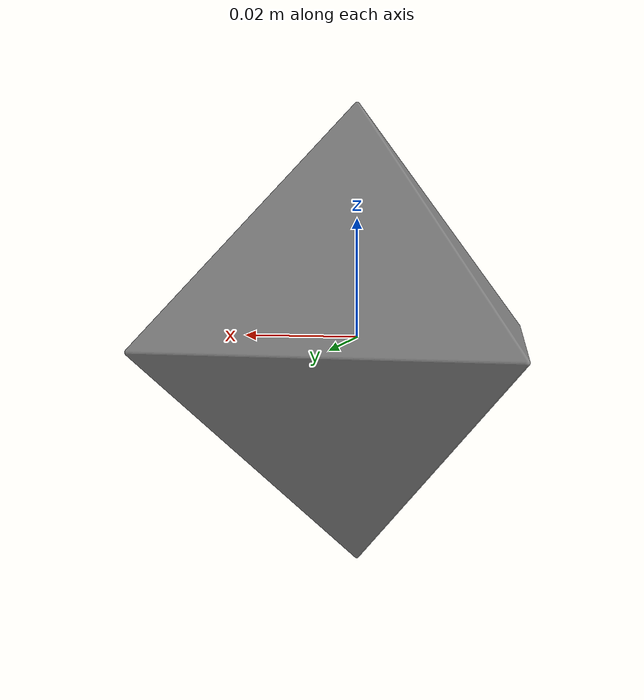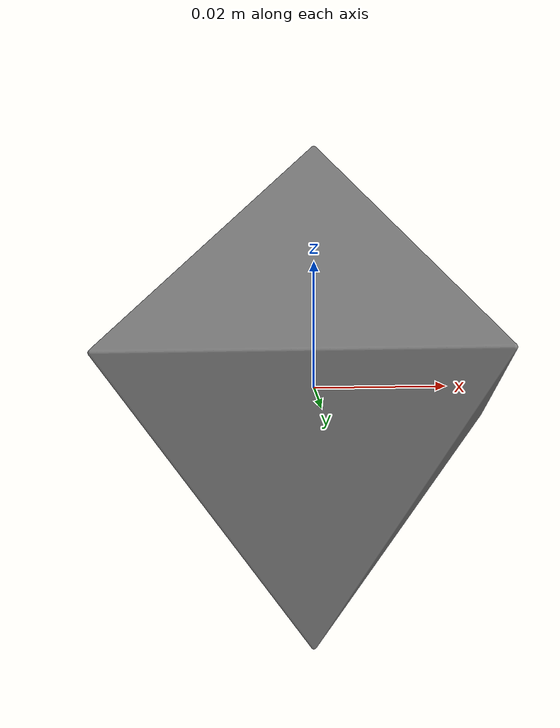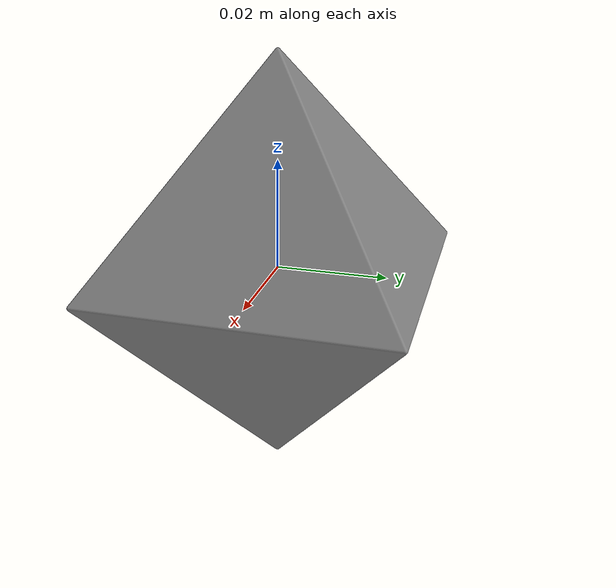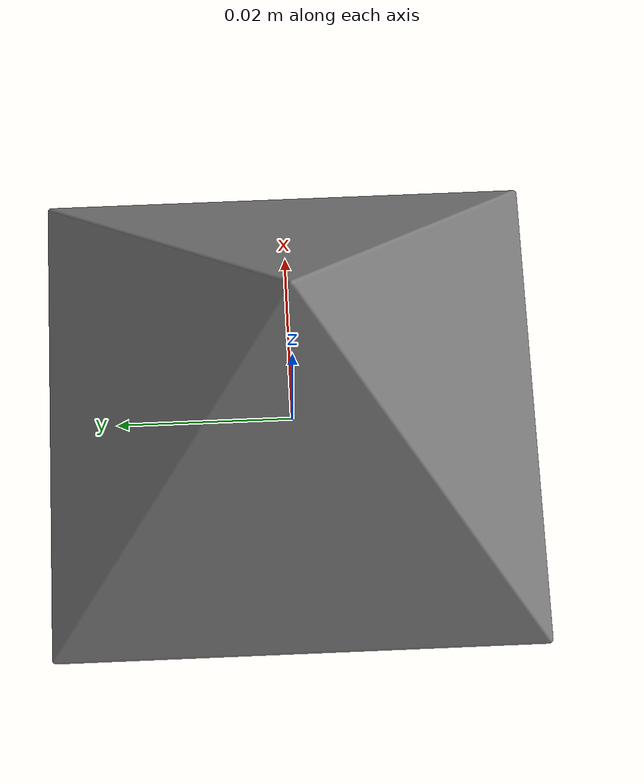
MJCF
<mujoco model="octahedron">
    <compiler angle="radian"/>
    <default>
        <geom type="mesh" condim="3" margin="0.005" contype="1" conaffinity="1"/>
    </default>
    <asset>
        <mesh name="octahedron" file="octahedron.stl" scale="0.0015 0.0015 0.0015"/>
    </asset>
    <worldbody>
        <body name="octahedron">
            <geom mesh="octahedron" density="400"/>
        </body>
    </worldbody>
</mujoco>
